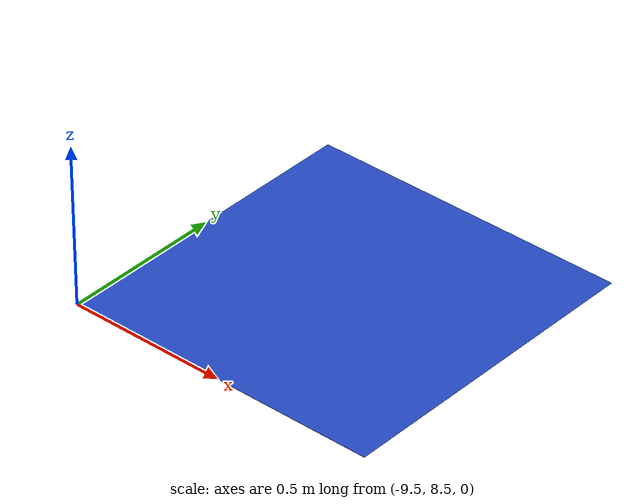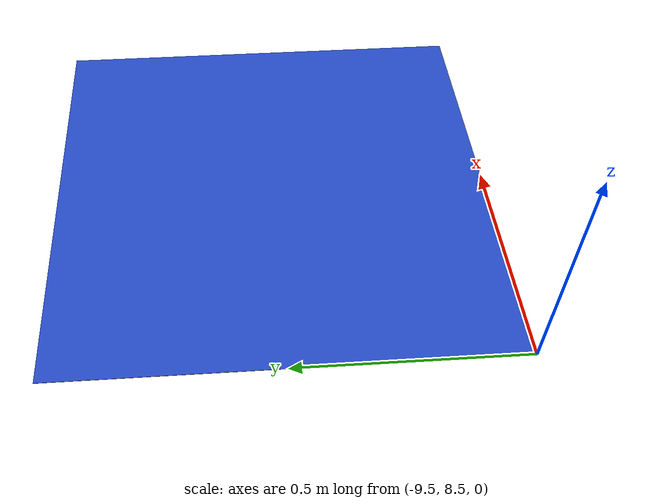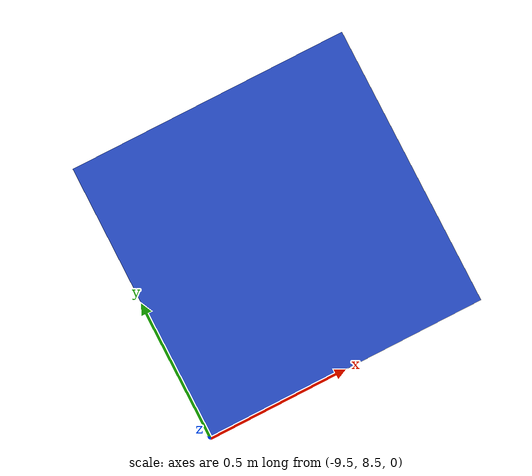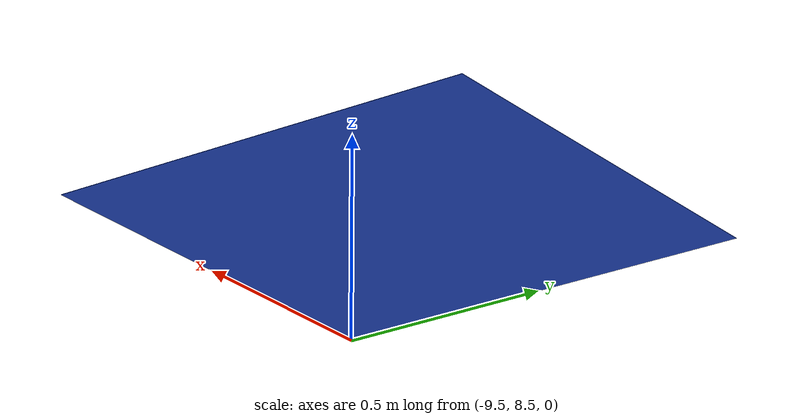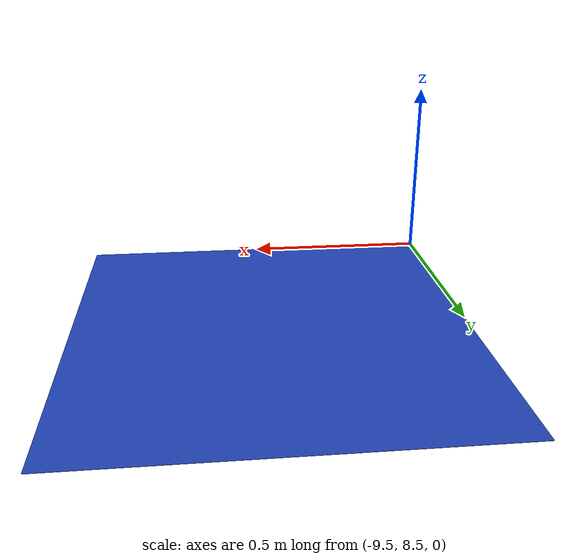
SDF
<?xml version='1.0'?>
<sdf version='1.6'>
    <model name='blue_destination_1'>
      <link name='link'>
        <inertial>
          <mass>0.1</mass>
          <inertia>
            <ixx>0.166667</ixx>
            <ixy>0</ixy>
            <ixz>0</ixz>
            <iyy>0.166667</iyy>
            <iyz>0</iyz>
            <izz>0.166667</izz>
          </inertia>
          <pose>0 0 0 0 -0 0</pose>
        </inertial>
        <self_collide>0</self_collide>
        <enable_wind>0</enable_wind>
        <kinematic>0</kinematic>
        <pose>0 0 0 0 -0 0</pose>
        <gravity>1</gravity>
        <visual name='visual'>
          <geometry>
            <box>
              <size>1 1 0.001</size>
            </box>
          </geometry>
          <material>
            <script>
              <name>Gazebo/Blue</name>
              <uri>file://media/materials/scripts/gazebo.material</uri>
            </script>
            <shader type='vertex'>
              <normal_map>__default__</normal_map>
            </shader>
          </material>
          <pose>0 0 0 0 -0 0</pose>
          <transparency>0</transparency>
          <cast_shadows>1</cast_shadows>
        </visual>
        <collision name='collision'>
          <laser_retro>0</laser_retro>
          <max_contacts>10</max_contacts>
          <pose>0 0 0 0 -0 0</pose>
          <geometry>
            <box>
              <size>1 1 0</size>
            </box>
          </geometry>
          <surface>
            <friction>
              <ode>
                <mu>1000.0</mu>
                <mu2>1000.0</mu2>
                <fdir1>0 1 1</fdir1>
                <slip1>0</slip1>
                <slip2>0</slip2>
              </ode>
              <torsional>
                <ode/>
              </torsional>
            </friction>
            <bounce>
              <restitution_coefficient>0</restitution_coefficient>
              <threshold>100000</threshold>
            </bounce>
            <contact>
              <ode>
                <soft_cfm>0</soft_cfm>
                <soft_erp>0.2</soft_erp>
                <kp>100000</kp>
                <kd>1</kd>
                <max_vel>1</max_vel>
           <mu1>1.0</mu1>
          <mu2>1.0</mu2>
                <min_depth>0.001</min_depth>
              </ode>
            </contact>
          </surface>
        </collision>
      </link>
      <static>1</static>
      <allow_auto_disable>1</allow_auto_disable>
      <pose>-9 9 0 0 -0 0</pose>
    </model>
</sdf>
